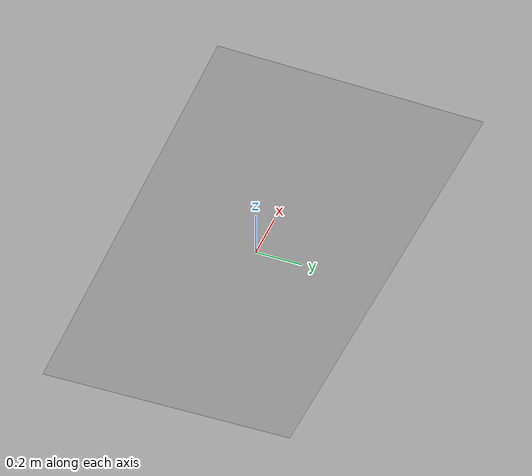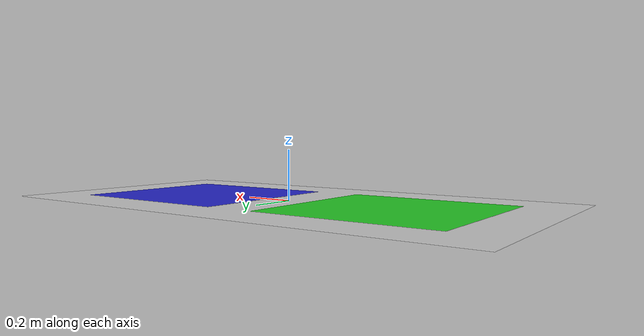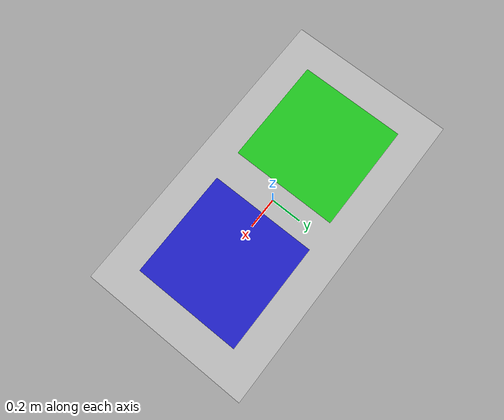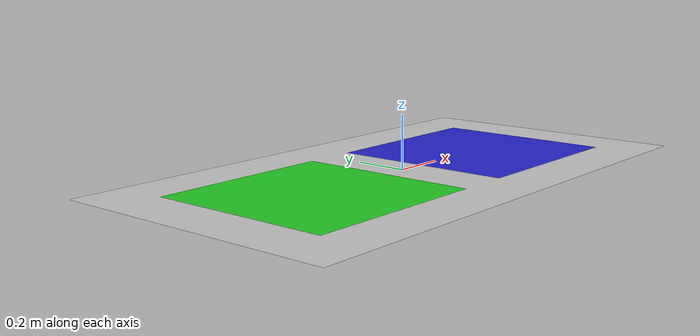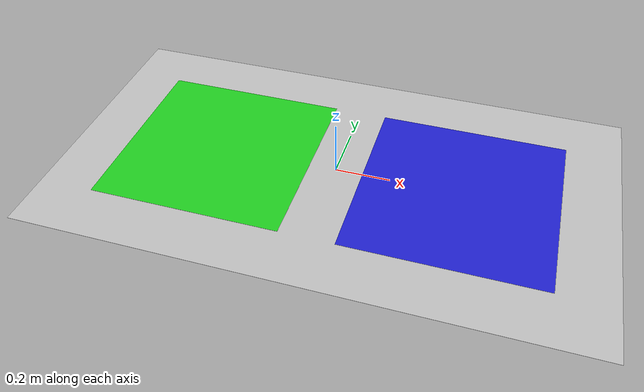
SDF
<?xml version="1.0"?>
<sdf version="1.11">
    <model name="drop_zone">
        <pose>0 0 0 0 0 0</pose>
        <static>true</static>
        <link name="link">

            <visual name="drop_zone_visual">
                <pose>0 0 0.001 0 0 0</pose>
                <geometry>
                    <plane>
                        <normal>0 0 1</normal>
                        <size>2.0 1.1</size>
                    </plane>
                </geometry>
                <material>
                    <ambient>0.9 0.9 0.9 0.5</ambient>
                    <diffuse>0.9 0.9 0.9 0.5</diffuse>
                    <specular>0.9 0.9 0.9 0.5</specular>
                </material>
            </visual>

            <visual name="green_hotspot_visual">
                <pose>-0.45 0 0.002 0 0 0</pose>
                <geometry>
                    <plane>
                        <normal>0 0 1</normal>
                        <size>0.7 0.7</size>
                    </plane>
                </geometry>
                <material>
                    <ambient>0 0.9 0 0.75</ambient>
                    <diffuse>0 0.9 0 0.75</diffuse>
                    <specular>0 0.9 0 0.75</specular>
                </material>
            </visual>

            <visual name="blue_hotspot_visual">
                <pose>0.45 0 0.002 0 0 0</pose>
                <geometry>
                    <plane>
                        <normal>0 0 1</normal>
                        <size>0.7 0.7</size>
                    </plane>
                </geometry>
                <material>
                    <ambient>0 0 0.9 0.75</ambient>
                    <diffuse>0 0 0.9 0.75</diffuse>
                    <specular>0 0 0.9 0.75</specular>
                </material>
            </visual>

        </link>
    </model>
</sdf>
